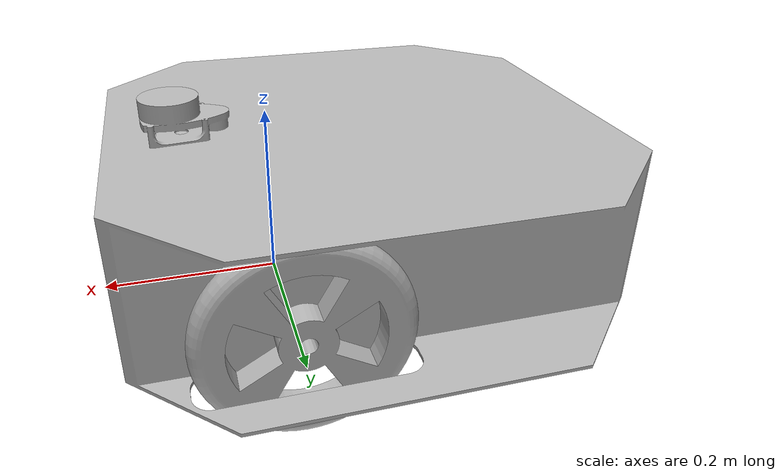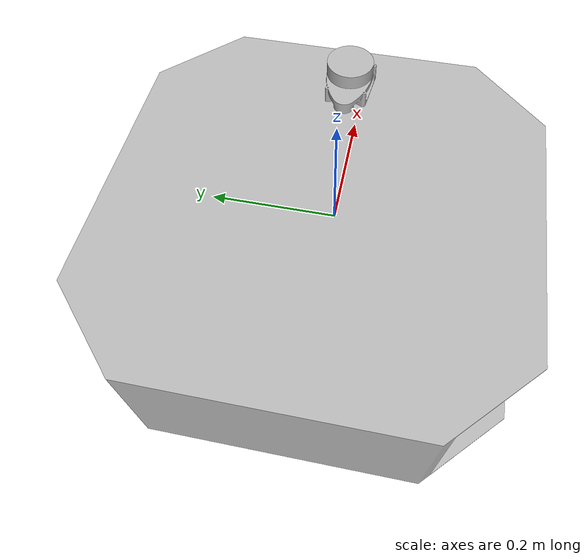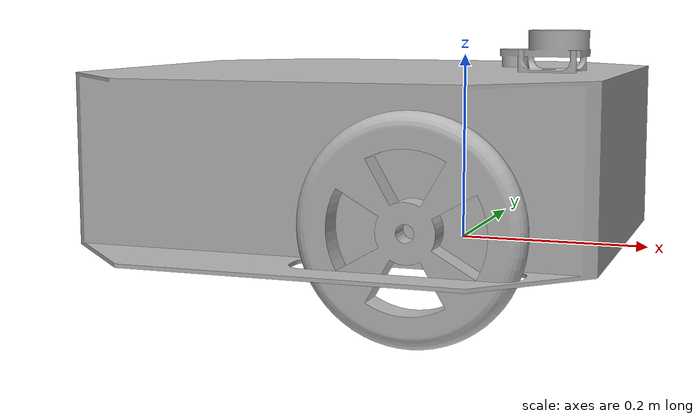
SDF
<?xml version="1.0" ?>
<sdf version="1.5">
  <model name="ar_ht_robot">
    <pose>0.0 0.0 0.0 0.0 0.0 0.0</pose>

    <link name="base_footprint_ideal"/>

    <link name="base_link_ideal">

      <inertial>
        <pose>-0.057 0 0.0 0.091 0 0</pose>
        <inertia>
          <ixx>0.009</ixx>
          <ixy>0.004</ixy>
          <ixz>0.009</ixz>
          <iyy>0.013</iyy>
          <iyz>-0.0008</iyz>
          <izz>0.8</izz>
        </inertia>
        <mass>15.3</mass>
      </inertial>

      <collision name="base_collision">
        <pose>0 0 0 0 0 0</pose>
        <geometry>
          <mesh>
            <uri>model://ar_ht_robot/meshes/base.dae</uri>
            <scale>0.001 0.001 0.001</scale>
          </mesh>
        </geometry>
      </collision>

      <visual name="base_visual">
        <pose>0.0 0 0 0 0 0</pose>
        <geometry>
          <mesh>
            <uri>model://ar_ht_robot/meshes/base.dae</uri>
            <scale>0.001 0.001 0.001</scale>
          </mesh>
        </geometry>
      </visual>
    </link>

    <link name="hokuyo_scan">
      <inertial>
        <pose>0.102 0 0.183 0 0 0</pose>
        <inertia>
          <ixx>0.001</ixx>
          <ixy>0.000</ixy>
          <ixz>0.000</ixz>
          <iyy>0.001</iyy>
          <iyz>0.000</iyz>
          <izz>0.001</izz>
        </inertia>
        <mass>0.01</mass>
      </inertial>

      <collision name="hokuyo_collision">
        <pose>0.102 0 0.183 0 0 0</pose>
        <geometry>
          <cylinder>
            <radius>0.0508</radius>
            <length>0.055</length>
          </cylinder>
        </geometry>
      </collision>

      <visual name="hokuyo_visual">
        <pose>0.102 0 0.183 0 0 0</pose>
        <geometry>
          <mesh>
            <uri>model://ar_ht_robot/meshes/lidar.dae</uri>
            <scale>0.001 0.001 0.001</scale>
          </mesh>
        </geometry>
      </visual>

      <sensor name="hokuyo" type="gpu_ray">
        <always_on>true</always_on>
        <visualize>true</visualize>
        <pose>0.102 0 0.216375 0 0 0</pose>
        <update_rate>5</update_rate>
        <ray>
          <scan>
            <horizontal>
              <samples>666</samples>
              <resolution>1.000000</resolution>
              <min_angle>-2.090000</min_angle>
              <max_angle>2.09000</max_angle>
            </horizontal>
          </scan>
          <range>
            <min>0.10000</min>
            <max>5.6</max>
            <resolution>0.015000</resolution>
          </range>
          <noise>
            <type>gaussian</type>
            <mean>0.0</mean>
            <stddev>0.01</stddev>
          </noise>
        </ray>
        <plugin name="hokuyo_laserscan" filename="libgazebo_ros_ray_sensor.so">
          <ros>

            <remapping>~/out:=scan</remapping>
          </ros>
          <output_type>sensor_msgs/LaserScan</output_type>
          <frame_name>scan_1</frame_name>
        </plugin>
      </sensor>
    </link>

    <link name="wheel_left_link">

      <inertial>
        <pose>0.0 0.23125 0.039 1.57 0 0</pose>
        <inertia>
          <ixx>0.001</ixx>
          <ixy>0.000</ixy>
          <ixz>0.000</ixz>
          <iyy>0.001</iyy>
          <iyz>0.000</iyz>
          <izz>0.0115</izz>
        </inertia>
        <mass>0.87</mass>
      </inertial>

      <collision name="wheel_left_collision">
        <pose>0.0 0.19975 0.039 1.57 0 0</pose>
        <geometry>
          <cylinder>
            <radius>0.115</radius>
            <length>0.0315</length>
          </cylinder>
        </geometry>
           <surface>
        <friction>
          <ode>
            <mu>1.01</mu>
            <mu2>1.01</mu2>
            <fdir1>0 0 1</fdir1>
            <slip1>0</slip1>
            <slip2>0</slip2>
          </ode>
        </friction>
        <bounce>
          <restitution_coefficient>0.0</restitution_coefficient>
          <threshold>100000.0</threshold>
        </bounce>
        <contact>
          <ode>
            <soft_cfm>0.0</soft_cfm>
            <soft_erp>0.2</soft_erp>
            <kp>100000.0</kp>
            <kd>1.0</kd>
            <max_vel>100.0</max_vel>
            <min_depth>0.001</min_depth>
          </ode>
        </contact>
      </surface>
      </collision>

      <visual name="wheel_left_visual">
        <pose>0.0 0.2155 0.039 1.57 0 0</pose>
        <geometry>
          <mesh>
            <uri>model://ar_ht_robot/meshes/wheel.dae</uri>
            <scale>0.001 0.001 0.001</scale>
          </mesh>
        </geometry>
      </visual>
    </link>

    <link name="wheel_right_link">

      <inertial>
        <pose>0.0 -0.19975 0.039 -1.57 0 0</pose>
        <inertia>
          <ixx>0.001</ixx>
          <ixy>0.000</ixy>
          <ixz>0.000</ixz>
          <iyy>0.001</iyy>
          <iyz>0.000</iyz>
          <izz>0.015</izz>
        </inertia>
        <mass>0.87</mass>
      </inertial>

      <collision name="wheel_right_collision">
        <pose>0.0 -0.23125 0.039 -1.57 0 0</pose>
        <geometry>
          <cylinder>
            <radius>0.115</radius>
            <length>0.0315</length>
          </cylinder>
        </geometry>
            <surface>
        <friction>
          <ode>
            <mu>1.01</mu>
            <mu2>1.01</mu2>
            <fdir1>0 0 1</fdir1>
            <slip1>0</slip1>
            <slip2>0</slip2>
          </ode>
        </friction>
        <bounce>
          <restitution_coefficient>0.0</restitution_coefficient>
          <threshold>100000.0</threshold>
        </bounce>
        <contact>
          <ode>
            <soft_cfm>0.0</soft_cfm>
            <soft_erp>0.2</soft_erp>
            <kp>100000.0</kp>
            <kd>1.0</kd>
            <max_vel>100.0</max_vel>
            <min_depth>0.001</min_depth>
          </ode>
        </contact>
      </surface>
      </collision>

      <visual name="wheel_right_visual">
        <pose>0.0 -0.2155 0.039 -1.57 0 0</pose>
        <geometry>
          <mesh>
            <uri>model://ar_ht_robot/meshes/wheel.dae</uri>
            <scale>0.001 0.001 0.001</scale>
          </mesh>
        </geometry>
      </visual>
    </link>

    <link name='caster_back_link'>
      <pose>-0.3 0 -0.038 0 0 0</pose>
      <inertial>
        <mass>1</mass>
        <inertia>
          <ixx>0.00001</ixx>
          <ixy>0.000</ixy>
          <ixz>0.000</ixz>
          <iyy>0.00001</iyy>
          <iyz>0.000</iyz>
          <izz>0.00001</izz>
        </inertia>
      </inertial>
      <collision name='collision'>
        <geometry>
          <sphere>
            <radius>0.04</radius>
          </sphere>
        </geometry>
         <surface>
        <friction>
          <ode>
            <mu>1.01</mu>
            <mu2>1.01</mu2>
            <fdir1>0 0 1</fdir1>
            <slip1>0</slip1>
            <slip2>0</slip2>
          </ode>
        </friction>
        <bounce>
          <restitution_coefficient>0.0</restitution_coefficient>
          <threshold>100000.0</threshold>
        </bounce>
        <contact>
          <ode>
            <soft_cfm>0.0</soft_cfm>
            <soft_erp>0.2</soft_erp>
            <kp>100000.0</kp>
            <kd>1.0</kd>
            <max_vel>100.0</max_vel>
            <min_depth>0.001</min_depth>
          </ode>
        </contact>
      </surface>
      </collision>
    </link>

    <joint name="base_joint" type="fixed">
      <parent>base_footprint_ideal</parent>
      <child>base_link_ideal</child>
      <pose>0.0 0.0 0.1 0 0 0</pose>
    </joint>

    <joint name="wheel_left_joint" type="revolute">
      <parent>base_link_ideal</parent>
      <child>wheel_left_link</child>
      <pose>0.0 0.2155 0.039 -1.57 0 0</pose>
      <axis>
        <xyz>0 0 1</xyz>
      </axis>
    </joint>

    <joint name="wheel_right_joint" type="revolute">
      <parent>base_link_ideal</parent>
      <child>wheel_right_link</child>
      <pose>0.0 -0.2155 0.039 -1.57 0 0</pose>
      <axis>
        <xyz>0 0 1</xyz>
      </axis>
    </joint>

    <joint name='caster_back_joint' type='ball'>
      <parent>base_link_ideal</parent>
      <child>caster_back_link</child>
    </joint>

    <joint name="hokuyo_joint" type="fixed">
      <parent>base_link_ideal</parent>
      <child>hokuyo_scan</child>
      <pose>0.102 0 0.183 0 0 0</pose>
      <axis>
        <xyz>0 0 1</xyz>
      </axis>
    </joint>

    <joint name="lds_joint" type="fixed">
      <parent>base_link_ideal</parent>
      <child>lds_scan</child>
      <pose>-0.102 0 0.183 0 0 0</pose>
      <axis>
        <xyz>0 0 1</xyz>
      </axis>
    </joint>

    <plugin name="ar_ht_diff_drive" filename="libgazebo_ros_diff_drive.so">

      <ros>
        <argument>odom:=odom_clean</argument>
      </ros>

      <update_rate>30</update_rate>

      <!-- wheels -->
      <left_joint>wheel_left_joint</left_joint>
      <right_joint>wheel_right_joint</right_joint>

      <!-- kinematics -->
      <wheel_separation>0.414</wheel_separation>
      <wheel_diameter>0.23</wheel_diameter>

      <!-- limits -->
      <max_wheel_torque>14.7</max_wheel_torque>
      <max_wheel_acceleration>1.0</max_wheel_acceleration>

      <command_topic>cmd_vel</command_topic>

      <!-- output -->
      <publish_odom>true</publish_odom>
      <publish_odom_tf>false</publish_odom_tf>
      <publish_wheel_tf>false</publish_wheel_tf>

      <odometry_topic>odom_clean</odometry_topic>
      <odometry_frame>odom_clean</odometry_frame>
      <robot_base_frame>base_footprint_clean</robot_base_frame>

    </plugin>

    <plugin name="ar_ht_joint_state" filename="libgazebo_ros_joint_state_publisher.so">
      <ros>
        <remapping>~/out:=joint_states_clean</remapping>
      </ros>
      <update_rate>31</update_rate>
      <joint_name>wheel_left_joint</joint_name>
      <joint_name>wheel_right_joint</joint_name>
    </plugin>
  </model>
</sdf>
